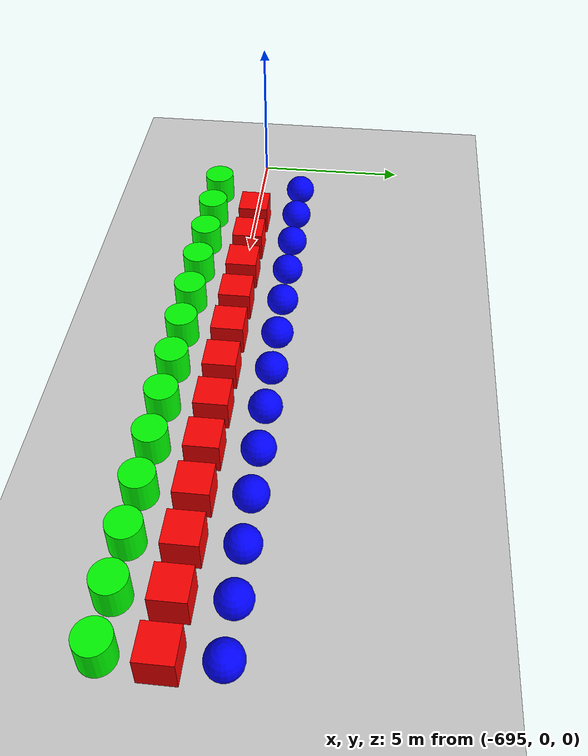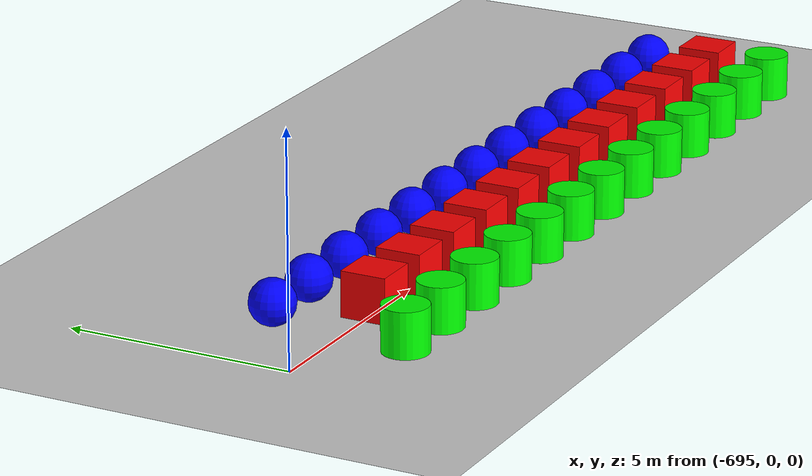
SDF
<sdf version="1.6">
 <world name="shapes">
  <model name="ground_plane">
   <static>true</static>
   <link name="link">
    <collision name="collision">
     <geometry><plane><normal>0 0 1</normal><size>100 100</size></plane></geometry>
    </collision>
    <visual name="visual">
     <geometry><plane><normal>0 0 1</normal><size>100 100</size></plane></geometry>
     <material>
      <ambient>0.8 0.8 0.8 1</ambient>
      <diffuse>0.8 0.8 0.8 1</diffuse>
      <specular>0.8 0.8 0.8 1</specular>
     </material>
    </visual>
   </link>
  </model>
  <model name="cylinder_38">
   <static>true</static>
   <pose>-693.0 -1.5 0.5 0 0 0</pose>
   <link name="cylinder_link">
    <inertial>
     <inertia><ixx>2</ixx><ixy>0</ixy><ixz>0</ixz><iyy>2</iyy><iyz>0</iyz><izz>2</izz></inertia>
     <mass>2.0</mass>
    </inertial>
    <collision name="cylinder_collision">
     <geometry><cylinder><radius>0.5</radius><length>1.0</length></cylinder></geometry>
    </collision>
    <visual name="cylinder_visual">
     <geometry><cylinder><radius>0.5</radius><length>1.0</length></cylinder></geometry>
     <material><ambient>0 1 0 1</ambient><diffuse>0 1 0 1</diffuse><specular>0 1 0 1</specular></material>
    </visual>
   </link>
  </model>
  <model name="sphere_38">
   <static>true</static>
   <pose>-693.0 1.5 0.5 0 0 0</pose>
   <link name="sphere_link">
    <inertial>
     <inertia><ixx>3</ixx><ixy>0</ixy><ixz>0</ixz><iyy>3</iyy><iyz>0</iyz><izz>3</izz></inertia>
     <mass>3.0</mass>
    </inertial>
    <collision name="sphere_collision"><geometry><sphere><radius>0.5</radius></sphere></geometry></collision>
    <visual name="sphere_visual">
     <geometry><sphere><radius>0.5</radius></sphere></geometry>
     <material><ambient>0 0 1 1</ambient><diffuse>0 0 1 1</diffuse><specular>0 0 1 1</specular></material>
    </visual>
   </link>
  </model>
  <model name="box_39">
   <static>true</static>
   <pose>-691.5 0 0.5 0 0 0</pose>
   <link name="box_link">
    <inertial>
     <inertia><ixx>1</ixx><ixy>0</ixy><ixz>0</ixz><iyy>1</iyy><iyz>0</iyz><izz>1</izz></inertia>
     <mass>1.0</mass>
    </inertial>
    <collision name="box_collision"><geometry><box><size>1 1 1</size></box></geometry></collision>
    <visual name="box_visual">
     <geometry><box><size>1 1 1</size></box></geometry>
     <material><ambient>1 0 0 1</ambient><diffuse>1 0 0 1</diffuse><specular>1 0 0 1</specular></material>
    </visual>
   </link>
  </model>
  <model name="cylinder_39">
   <static>true</static>
   <pose>-691.5 -1.5 0.5 0 0 0</pose>
   <link name="cylinder_link">
    <inertial>
     <inertia><ixx>2</ixx><ixy>0</ixy><ixz>0</ixz><iyy>2</iyy><iyz>0</iyz><izz>2</izz></inertia>
     <mass>2.0</mass>
    </inertial>
    <collision name="cylinder_collision">
     <geometry><cylinder><radius>0.5</radius><length>1.0</length></cylinder></geometry>
    </collision>
    <visual name="cylinder_visual">
     <geometry><cylinder><radius>0.5</radius><length>1.0</length></cylinder></geometry>
     <material><ambient>0 1 0 1</ambient><diffuse>0 1 0 1</diffuse><specular>0 1 0 1</specular></material>
    </visual>
   </link>
  </model>
  <model name="sphere_39">
   <static>true</static>
   <pose>-691.5 1.5 0.5 0 0 0</pose>
   <link name="sphere_link">
    <inertial>
     <inertia><ixx>3</ixx><ixy>0</ixy><ixz>0</ixz><iyy>3</iyy><iyz>0</iyz><izz>3</izz></inertia>
     <mass>3.0</mass>
    </inertial>
    <collision name="sphere_collision"><geometry><sphere><radius>0.5</radius></sphere></geometry></collision>
    <visual name="sphere_visual">
     <geometry><sphere><radius>0.5</radius></sphere></geometry>
     <material><ambient>0 0 1 1</ambient><diffuse>0 0 1 1</diffuse><specular>0 0 1 1</specular></material>
    </visual>
   </link>
  </model>
  <model name="box_40">
   <static>true</static>
   <pose>-690.0 0 0.5 0 0 0</pose>
   <link name="box_link">
    <inertial>
     <inertia><ixx>1</ixx><ixy>0</ixy><ixz>0</ixz><iyy>1</iyy><iyz>0</iyz><izz>1</izz></inertia>
     <mass>1.0</mass>
    </inertial>
    <collision name="box_collision"><geometry><box><size>1 1 1</size></box></geometry></collision>
    <visual name="box_visual">
     <geometry><box><size>1 1 1</size></box></geometry>
     <material><ambient>1 0 0 1</ambient><diffuse>1 0 0 1</diffuse><specular>1 0 0 1</specular></material>
    </visual>
   </link>
  </model>
  <model name="cylinder_40">
   <static>true</static>
   <pose>-690.0 -1.5 0.5 0 0 0</pose>
   <link name="cylinder_link">
    <inertial>
     <inertia><ixx>2</ixx><ixy>0</ixy><ixz>0</ixz><iyy>2</iyy><iyz>0</iyz><izz>2</izz></inertia>
     <mass>2.0</mass>
    </inertial>
    <collision name="cylinder_collision">
     <geometry><cylinder><radius>0.5</radius><length>1.0</length></cylinder></geometry>
    </collision>
    <visual name="cylinder_visual">
     <geometry><cylinder><radius>0.5</radius><length>1.0</length></cylinder></geometry>
     <material><ambient>0 1 0 1</ambient><diffuse>0 1 0 1</diffuse><specular>0 1 0 1</specular></material>
    </visual>
   </link>
  </model>
  <model name="sphere_40">
   <static>true</static>
   <pose>-690.0 1.5 0.5 0 0 0</pose>
   <link name="sphere_link">
    <inertial>
     <inertia><ixx>3</ixx><ixy>0</ixy><ixz>0</ixz><iyy>3</iyy><iyz>0</iyz><izz>3</izz></inertia>
     <mass>3.0</mass>
    </inertial>
    <collision name="sphere_collision"><geometry><sphere><radius>0.5</radius></sphere></geometry></collision>
    <visual name="sphere_visual">
     <geometry><sphere><radius>0.5</radius></sphere></geometry>
     <material><ambient>0 0 1 1</ambient><diffuse>0 0 1 1</diffuse><specular>0 0 1 1</specular></material>
    </visual>
   </link>
  </model>
  <model name="box_41">
   <static>true</static>
   <pose>-688.5 0 0.5 0 0 0</pose>
   <link name="box_link">
    <inertial>
     <inertia><ixx>1</ixx><ixy>0</ixy><ixz>0</ixz><iyy>1</iyy><iyz>0</iyz><izz>1</izz></inertia>
     <mass>1.0</mass>
    </inertial>
    <collision name="box_collision"><geometry><box><size>1 1 1</size></box></geometry></collision>
    <visual name="box_visual">
     <geometry><box><size>1 1 1</size></box></geometry>
     <material><ambient>1 0 0 1</ambient><diffuse>1 0 0 1</diffuse><specular>1 0 0 1</specular></material>
    </visual>
   </link>
  </model>
  <model name="cylinder_41">
   <static>true</static>
   <pose>-688.5 -1.5 0.5 0 0 0</pose>
   <link name="cylinder_link">
    <inertial>
     <inertia><ixx>2</ixx><ixy>0</ixy><ixz>0</ixz><iyy>2</iyy><iyz>0</iyz><izz>2</izz></inertia>
     <mass>2.0</mass>
    </inertial>
    <collision name="cylinder_collision">
     <geometry><cylinder><radius>0.5</radius><length>1.0</length></cylinder></geometry>
    </collision>
    <visual name="cylinder_visual">
     <geometry><cylinder><radius>0.5</radius><length>1.0</length></cylinder></geometry>
     <material><ambient>0 1 0 1</ambient><diffuse>0 1 0 1</diffuse><specular>0 1 0 1</specular></material>
    </visual>
   </link>
  </model>
  <model name="sphere_41">
   <static>true</static>
   <pose>-688.5 1.5 0.5 0 0 0</pose>
   <link name="sphere_link">
    <inertial>
     <inertia><ixx>3</ixx><ixy>0</ixy><ixz>0</ixz><iyy>3</iyy><iyz>0</iyz><izz>3</izz></inertia>
     <mass>3.0</mass>
    </inertial>
    <collision name="sphere_collision"><geometry><sphere><radius>0.5</radius></sphere></geometry></collision>
    <visual name="sphere_visual">
     <geometry><sphere><radius>0.5</radius></sphere></geometry>
     <material><ambient>0 0 1 1</ambient><diffuse>0 0 1 1</diffuse><specular>0 0 1 1</specular></material>
    </visual>
   </link>
  </model>
  <model name="box_42">
   <static>true</static>
   <pose>-687.0 0 0.5 0 0 0</pose>
   <link name="box_link">
    <inertial>
     <inertia><ixx>1</ixx><ixy>0</ixy><ixz>0</ixz><iyy>1</iyy><iyz>0</iyz><izz>1</izz></inertia>
     <mass>1.0</mass>
    </inertial>
    <collision name="box_collision"><geometry><box><size>1 1 1</size></box></geometry></collision>
    <visual name="box_visual">
     <geometry><box><size>1 1 1</size></box></geometry>
     <material><ambient>1 0 0 1</ambient><diffuse>1 0 0 1</diffuse><specular>1 0 0 1</specular></material>
    </visual>
   </link>
  </model>
  <model name="cylinder_42">
   <static>true</static>
   <pose>-687.0 -1.5 0.5 0 0 0</pose>
   <link name="cylinder_link">
    <inertial>
     <inertia><ixx>2</ixx><ixy>0</ixy><ixz>0</ixz><iyy>2</iyy><iyz>0</iyz><izz>2</izz></inertia>
     <mass>2.0</mass>
    </inertial>
    <collision name="cylinder_collision">
     <geometry><cylinder><radius>0.5</radius><length>1.0</length></cylinder></geometry>
    </collision>
    <visual name="cylinder_visual">
     <geometry><cylinder><radius>0.5</radius><length>1.0</length></cylinder></geometry>
     <material><ambient>0 1 0 1</ambient><diffuse>0 1 0 1</diffuse><specular>0 1 0 1</specular></material>
    </visual>
   </link>
  </model>
  <model name="sphere_42">
   <static>true</static>
   <pose>-687.0 1.5 0.5 0 0 0</pose>
   <link name="sphere_link">
    <inertial>
     <inertia><ixx>3</ixx><ixy>0</ixy><ixz>0</ixz><iyy>3</iyy><iyz>0</iyz><izz>3</izz></inertia>
     <mass>3.0</mass>
    </inertial>
    <collision name="sphere_collision"><geometry><sphere><radius>0.5</radius></sphere></geometry></collision>
    <visual name="sphere_visual">
     <geometry><sphere><radius>0.5</radius></sphere></geometry>
     <material><ambient>0 0 1 1</ambient><diffuse>0 0 1 1</diffuse><specular>0 0 1 1</specular></material>
    </visual>
   </link>
  </model>
  <model name="box_43">
   <static>true</static>
   <pose>-685.5 0 0.5 0 0 0</pose>
   <link name="box_link">
    <inertial>
     <inertia><ixx>1</ixx><ixy>0</ixy><ixz>0</ixz><iyy>1</iyy><iyz>0</iyz><izz>1</izz></inertia>
     <mass>1.0</mass>
    </inertial>
    <collision name="box_collision"><geometry><box><size>1 1 1</size></box></geometry></collision>
    <visual name="box_visual">
     <geometry><box><size>1 1 1</size></box></geometry>
     <material><ambient>1 0 0 1</ambient><diffuse>1 0 0 1</diffuse><specular>1 0 0 1</specular></material>
    </visual>
   </link>
  </model>
  <model name="cylinder_43">
   <static>true</static>
   <pose>-685.5 -1.5 0.5 0 0 0</pose>
   <link name="cylinder_link">
    <inertial>
     <inertia><ixx>2</ixx><ixy>0</ixy><ixz>0</ixz><iyy>2</iyy><iyz>0</iyz><izz>2</izz></inertia>
     <mass>2.0</mass>
    </inertial>
    <collision name="cylinder_collision">
     <geometry><cylinder><radius>0.5</radius><length>1.0</length></cylinder></geometry>
    </collision>
    <visual name="cylinder_visual">
     <geometry><cylinder><radius>0.5</radius><length>1.0</length></cylinder></geometry>
     <material><ambient>0 1 0 1</ambient><diffuse>0 1 0 1</diffuse><specular>0 1 0 1</specular></material>
    </visual>
   </link>
  </model>
  <model name="sphere_43">
   <static>true</static>
   <pose>-685.5 1.5 0.5 0 0 0</pose>
   <link name="sphere_link">
    <inertial>
     <inertia><ixx>3</ixx><ixy>0</ixy><ixz>0</ixz><iyy>3</iyy><iyz>0</iyz><izz>3</izz></inertia>
     <mass>3.0</mass>
    </inertial>
    <collision name="sphere_collision"><geometry><sphere><radius>0.5</radius></sphere></geometry></collision>
    <visual name="sphere_visual">
     <geometry><sphere><radius>0.5</radius></sphere></geometry>
     <material><ambient>0 0 1 1</ambient><diffuse>0 0 1 1</diffuse><specular>0 0 1 1</specular></material>
    </visual>
   </link>
  </model>
  <model name="box_44">
   <static>true</static>
   <pose>-684.0 0 0.5 0 0 0</pose>
   <link name="box_link">
    <inertial>
     <inertia><ixx>1</ixx><ixy>0</ixy><ixz>0</ixz><iyy>1</iyy><iyz>0</iyz><izz>1</izz></inertia>
     <mass>1.0</mass>
    </inertial>
    <collision name="box_collision"><geometry><box><size>1 1 1</size></box></geometry></collision>
    <visual name="box_visual">
     <geometry><box><size>1 1 1</size></box></geometry>
     <material><ambient>1 0 0 1</ambient><diffuse>1 0 0 1</diffuse><specular>1 0 0 1</specular></material>
    </visual>
   </link>
  </model>
  <model name="cylinder_44">
   <static>true</static>
   <pose>-684.0 -1.5 0.5 0 0 0</pose>
   <link name="cylinder_link">
    <inertial>
     <inertia><ixx>2</ixx><ixy>0</ixy><ixz>0</ixz><iyy>2</iyy><iyz>0</iyz><izz>2</izz></inertia>
     <mass>2.0</mass>
    </inertial>
    <collision name="cylinder_collision">
     <geometry><cylinder><radius>0.5</radius><length>1.0</length></cylinder></geometry>
    </collision>
    <visual name="cylinder_visual">
     <geometry><cylinder><radius>0.5</radius><length>1.0</length></cylinder></geometry>
     <material><ambient>0 1 0 1</ambient><diffuse>0 1 0 1</diffuse><specular>0 1 0 1</specular></material>
    </visual>
   </link>
  </model>
  <model name="sphere_44">
   <static>true</static>
   <pose>-684.0 1.5 0.5 0 0 0</pose>
   <link name="sphere_link">
    <inertial>
     <inertia><ixx>3</ixx><ixy>0</ixy><ixz>0</ixz><iyy>3</iyy><iyz>0</iyz><izz>3</izz></inertia>
     <mass>3.0</mass>
    </inertial>
    <collision name="sphere_collision"><geometry><sphere><radius>0.5</radius></sphere></geometry></collision>
    <visual name="sphere_visual">
     <geometry><sphere><radius>0.5</radius></sphere></geometry>
     <material><ambient>0 0 1 1</ambient><diffuse>0 0 1 1</diffuse><specular>0 0 1 1</specular></material>
    </visual>
   </link>
  </model>
  <model name="box_45">
   <static>true</static>
   <pose>-682.5 0 0.5 0 0 0</pose>
   <link name="box_link">
    <inertial>
     <inertia><ixx>1</ixx><ixy>0</ixy><ixz>0</ixz><iyy>1</iyy><iyz>0</iyz><izz>1</izz></inertia>
     <mass>1.0</mass>
    </inertial>
    <collision name="box_collision"><geometry><box><size>1 1 1</size></box></geometry></collision>
    <visual name="box_visual">
     <geometry><box><size>1 1 1</size></box></geometry>
     <material><ambient>1 0 0 1</ambient><diffuse>1 0 0 1</diffuse><specular>1 0 0 1</specular></material>
    </visual>
   </link>
  </model>
  <model name="cylinder_45">
   <static>true</static>
   <pose>-682.5 -1.5 0.5 0 0 0</pose>
   <link name="cylinder_link">
    <inertial>
     <inertia><ixx>2</ixx><ixy>0</ixy><ixz>0</ixz><iyy>2</iyy><iyz>0</iyz><izz>2</izz></inertia>
     <mass>2.0</mass>
    </inertial>
    <collision name="cylinder_collision">
     <geometry><cylinder><radius>0.5</radius><length>1.0</length></cylinder></geometry>
    </collision>
    <visual name="cylinder_visual">
     <geometry><cylinder><radius>0.5</radius><length>1.0</length></cylinder></geometry>
     <material><ambient>0 1 0 1</ambient><diffuse>0 1 0 1</diffuse><specular>0 1 0 1</specular></material>
    </visual>
   </link>
  </model>
  <model name="sphere_45">
   <static>true</static>
   <pose>-682.5 1.5 0.5 0 0 0</pose>
   <link name="sphere_link">
    <inertial>
     <inertia><ixx>3</ixx><ixy>0</ixy><ixz>0</ixz><iyy>3</iyy><iyz>0</iyz><izz>3</izz></inertia>
     <mass>3.0</mass>
    </inertial>
    <collision name="sphere_collision"><geometry><sphere><radius>0.5</radius></sphere></geometry></collision>
    <visual name="sphere_visual">
     <geometry><sphere><radius>0.5</radius></sphere></geometry>
     <material><ambient>0 0 1 1</ambient><diffuse>0 0 1 1</diffuse><specular>0 0 1 1</specular></material>
    </visual>
   </link>
  </model>
  <model name="box_46">
   <static>true</static>
   <pose>-681.0 0 0.5 0 0 0</pose>
   <link name="box_link">
    <inertial>
     <inertia><ixx>1</ixx><ixy>0</ixy><ixz>0</ixz><iyy>1</iyy><iyz>0</iyz><izz>1</izz></inertia>
     <mass>1.0</mass>
    </inertial>
    <collision name="box_collision"><geometry><box><size>1 1 1</size></box></geometry></collision>
    <visual name="box_visual">
     <geometry><box><size>1 1 1</size></box></geometry>
     <material><ambient>1 0 0 1</ambient><diffuse>1 0 0 1</diffuse><specular>1 0 0 1</specular></material>
    </visual>
   </link>
  </model>
  <model name="cylinder_46">
   <static>true</static>
   <pose>-681.0 -1.5 0.5 0 0 0</pose>
   <link name="cylinder_link">
    <inertial>
     <inertia><ixx>2</ixx><ixy>0</ixy><ixz>0</ixz><iyy>2</iyy><iyz>0</iyz><izz>2</izz></inertia>
     <mass>2.0</mass>
    </inertial>
    <collision name="cylinder_collision">
     <geometry><cylinder><radius>0.5</radius><length>1.0</length></cylinder></geometry>
    </collision>
    <visual name="cylinder_visual">
     <geometry><cylinder><radius>0.5</radius><length>1.0</length></cylinder></geometry>
     <material><ambient>0 1 0 1</ambient><diffuse>0 1 0 1</diffuse><specular>0 1 0 1</specular></material>
    </visual>
   </link>
  </model>
  <model name="sphere_46">
   <static>true</static>
   <pose>-681.0 1.5 0.5 0 0 0</pose>
   <link name="sphere_link">
    <inertial>
     <inertia><ixx>3</ixx><ixy>0</ixy><ixz>0</ixz><iyy>3</iyy><iyz>0</iyz><izz>3</izz></inertia>
     <mass>3.0</mass>
    </inertial>
    <collision name="sphere_collision"><geometry><sphere><radius>0.5</radius></sphere></geometry></collision>
    <visual name="sphere_visual">
     <geometry><sphere><radius>0.5</radius></sphere></geometry>
     <material><ambient>0 0 1 1</ambient><diffuse>0 0 1 1</diffuse><specular>0 0 1 1</specular></material>
    </visual>
   </link>
  </model>
  <model name="box_47">
   <static>true</static>
   <pose>-679.5 0 0.5 0 0 0</pose>
   <link name="box_link">
    <inertial>
     <inertia><ixx>1</ixx><ixy>0</ixy><ixz>0</ixz><iyy>1</iyy><iyz>0</iyz><izz>1</izz></inertia>
     <mass>1.0</mass>
    </inertial>
    <collision name="box_collision"><geometry><box><size>1 1 1</size></box></geometry></collision>
    <visual name="box_visual">
     <geometry><box><size>1 1 1</size></box></geometry>
     <material><ambient>1 0 0 1</ambient><diffuse>1 0 0 1</diffuse><specular>1 0 0 1</specular></material>
    </visual>
   </link>
  </model>
  <model name="cylinder_47">
   <static>true</static>
   <pose>-679.5 -1.5 0.5 0 0 0</pose>
   <link name="cylinder_link">
    <inertial>
     <inertia><ixx>2</ixx><ixy>0</ixy><ixz>0</ixz><iyy>2</iyy><iyz>0</iyz><izz>2</izz></inertia>
     <mass>2.0</mass>
    </inertial>
    <collision name="cylinder_collision">
     <geometry><cylinder><radius>0.5</radius><length>1.0</length></cylinder></geometry>
    </collision>
    <visual name="cylinder_visual">
     <geometry><cylinder><radius>0.5</radius><length>1.0</length></cylinder></geometry>
     <material><ambient>0 1 0 1</ambient><diffuse>0 1 0 1</diffuse><specular>0 1 0 1</specular></material>
    </visual>
   </link>
  </model>
  <model name="sphere_47">
   <static>true</static>
   <pose>-679.5 1.5 0.5 0 0 0</pose>
   <link name="sphere_link">
    <inertial>
     <inertia><ixx>3</ixx><ixy>0</ixy><ixz>0</ixz><iyy>3</iyy><iyz>0</iyz><izz>3</izz></inertia>
     <mass>3.0</mass>
    </inertial>
    <collision name="sphere_collision"><geometry><sphere><radius>0.5</radius></sphere></geometry></collision>
    <visual name="sphere_visual">
     <geometry><sphere><radius>0.5</radius></sphere></geometry>
     <material><ambient>0 0 1 1</ambient><diffuse>0 0 1 1</diffuse><specular>0 0 1 1</specular></material>
    </visual>
   </link>
  </model>
  <model name="box_48">
   <static>true</static>
   <pose>-678.0 0 0.5 0 0 0</pose>
   <link name="box_link">
    <inertial>
     <inertia><ixx>1</ixx><ixy>0</ixy><ixz>0</ixz><iyy>1</iyy><iyz>0</iyz><izz>1</izz></inertia>
     <mass>1.0</mass>
    </inertial>
    <collision name="box_collision"><geometry><box><size>1 1 1</size></box></geometry></collision>
    <visual name="box_visual">
     <geometry><box><size>1 1 1</size></box></geometry>
     <material><ambient>1 0 0 1</ambient><diffuse>1 0 0 1</diffuse><specular>1 0 0 1</specular></material>
    </visual>
   </link>
  </model>
  <model name="cylinder_48">
   <static>true</static>
   <pose>-678.0 -1.5 0.5 0 0 0</pose>
   <link name="cylinder_link">
    <inertial>
     <inertia><ixx>2</ixx><ixy>0</ixy><ixz>0</ixz><iyy>2</iyy><iyz>0</iyz><izz>2</izz></inertia>
     <mass>2.0</mass>
    </inertial>
    <collision name="cylinder_collision">
     <geometry><cylinder><radius>0.5</radius><length>1.0</length></cylinder></geometry>
    </collision>
    <visual name="cylinder_visual">
     <geometry><cylinder><radius>0.5</radius><length>1.0</length></cylinder></geometry>
     <material><ambient>0 1 0 1</ambient><diffuse>0 1 0 1</diffuse><specular>0 1 0 1</specular></material>
    </visual>
   </link>
  </model>
  <model name="sphere_48">
   <static>true</static>
   <pose>-678.0 1.5 0.5 0 0 0</pose>
   <link name="sphere_link">
    <inertial>
     <inertia><ixx>3</ixx><ixy>0</ixy><ixz>0</ixz><iyy>3</iyy><iyz>0</iyz><izz>3</izz></inertia>
     <mass>3.0</mass>
    </inertial>
    <collision name="sphere_collision"><geometry><sphere><radius>0.5</radius></sphere></geometry></collision>
    <visual name="sphere_visual">
     <geometry><sphere><radius>0.5</radius></sphere></geometry>
     <material><ambient>0 0 1 1</ambient><diffuse>0 0 1 1</diffuse><specular>0 0 1 1</specular></material>
    </visual>
   </link>
  </model>
  <model name="box_49">
   <static>true</static>
   <pose>-676.5 0 0.5 0 0 0</pose>
   <link name="box_link">
    <inertial>
     <inertia><ixx>1</ixx><ixy>0</ixy><ixz>0</ixz><iyy>1</iyy><iyz>0</iyz><izz>1</izz></inertia>
     <mass>1.0</mass>
    </inertial>
    <collision name="box_collision"><geometry><box><size>1 1 1</size></box></geometry></collision>
    <visual name="box_visual">
     <geometry><box><size>1 1 1</size></box></geometry>
     <material><ambient>1 0 0 1</ambient><diffuse>1 0 0 1</diffuse><specular>1 0 0 1</specular></material>
    </visual>
   </link>
  </model>
  <model name="cylinder_49">
   <static>true</static>
   <pose>-676.5 -1.5 0.5 0 0 0</pose>
   <link name="cylinder_link">
    <inertial>
     <inertia><ixx>2</ixx><ixy>0</ixy><ixz>0</ixz><iyy>2</iyy><iyz>0</iyz><izz>2</izz></inertia>
     <mass>2.0</mass>
    </inertial>
    <collision name="cylinder_collision">
     <geometry><cylinder><radius>0.5</radius><length>1.0</length></cylinder></geometry>
    </collision>
    <visual name="cylinder_visual">
     <geometry><cylinder><radius>0.5</radius><length>1.0</length></cylinder></geometry>
     <material><ambient>0 1 0 1</ambient><diffuse>0 1 0 1</diffuse><specular>0 1 0 1</specular></material>
    </visual>
   </link>
  </model>
  <model name="sphere_49">
   <static>true</static>
   <pose>-676.5 1.5 0.5 0 0 0</pose>
   <link name="sphere_link">
    <inertial>
     <inertia><ixx>3</ixx><ixy>0</ixy><ixz>0</ixz><iyy>3</iyy><iyz>0</iyz><izz>3</izz></inertia>
     <mass>3.0</mass>
    </inertial>
    <collision name="sphere_collision"><geometry><sphere><radius>0.5</radius></sphere></geometry></collision>
    <visual name="sphere_visual">
     <geometry><sphere><radius>0.5</radius></sphere></geometry>
     <material><ambient>0 0 1 1</ambient><diffuse>0 0 1 1</diffuse><specular>0 0 1 1</specular></material>
    </visual>
   </link>
  </model>
  <model name="box_50">
   <static>true</static>
   <pose>-675.0 0 0.5 0 0 0</pose>
   <link name="box_link">
    <inertial>
     <inertia><ixx>1</ixx><ixy>0</ixy><ixz>0</ixz><iyy>1</iyy><iyz>0</iyz><izz>1</izz></inertia>
     <mass>1.0</mass>
    </inertial>
    <collision name="box_collision"><geometry><box><size>1 1 1</size></box></geometry></collision>
    <visual name="box_visual">
     <geometry><box><size>1 1 1</size></box></geometry>
     <material><ambient>1 0 0 1</ambient><diffuse>1 0 0 1</diffuse><specular>1 0 0 1</specular></material>
    </visual>
   </link>
  </model>
  <model name="cylinder_50">
   <static>true</static>
   <pose>-675.0 -1.5 0.5 0 0 0</pose>
   <link name="cylinder_link">
    <inertial>
     <inertia><ixx>2</ixx><ixy>0</ixy><ixz>0</ixz><iyy>2</iyy><iyz>0</iyz><izz>2</izz></inertia>
     <mass>2.0</mass>
    </inertial>
    <collision name="cylinder_collision">
     <geometry><cylinder><radius>0.5</radius><length>1.0</length></cylinder></geometry>
    </collision>
    <visual name="cylinder_visual">
     <geometry><cylinder><radius>0.5</radius><length>1.0</length></cylinder></geometry>
     <material><ambient>0 1 0 1</ambient><diffuse>0 1 0 1</diffuse><specular>0 1 0 1</specular></material>
    </visual>
   </link>
  </model>
  <model name="sphere_50">
   <static>true</static>
   <pose>-675.0 1.5 0.5 0 0 0</pose>
   <link name="sphere_link">
    <inertial>
     <inertia><ixx>3</ixx><ixy>0</ixy><ixz>0</ixz><iyy>3</iyy><iyz>0</iyz><izz>3</izz></inertia>
     <mass>3.0</mass>
    </inertial>
    <collision name="sphere_collision"><geometry><sphere><radius>0.5</radius></sphere></geometry></collision>
    <visual name="sphere_visual">
     <geometry><sphere><radius>0.5</radius></sphere></geometry>
     <material><ambient>0 0 1 1</ambient><diffuse>0 0 1 1</diffuse><specular>0 0 1 1</specular></material>
    </visual>
   </link>
  </model>
 </world>
</sdf>
